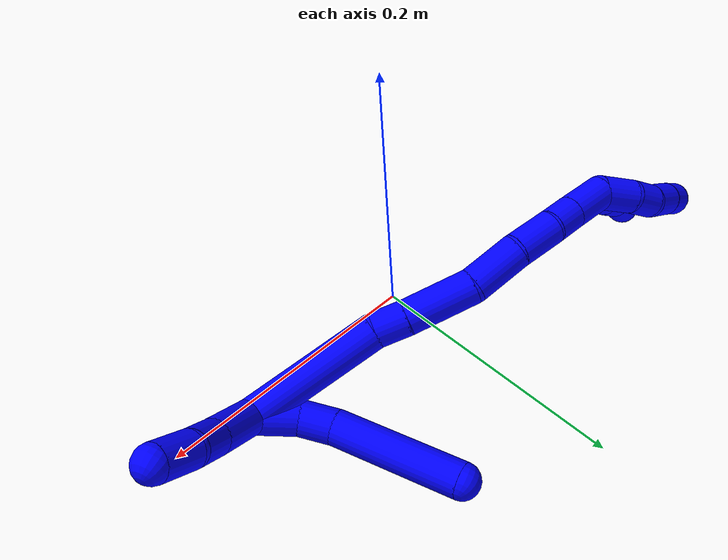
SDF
<sdf version="1.7">
 <world name="default">
  <model name="1">
   <static>0</static>
   <link name="1">
    <collision name="collision-cylinder-e_1_2_8">
     <pose>-0.007301 0.012135 0.006758 -1.06266 -0.483973 0.28811</pose>
     <geometry><cylinder><radius>0.0125</radius><length>0.031383</length></cylinder></geometry>
     <surface>
      <friction><ode><mu>1.16</mu><mu2>1.16</mu2><slip1>0</slip1><slip2>0</slip2></ode></friction>
      <contact><ode><kp>1e+06</kp><kd>1</kd><max_vel>0</max_vel><min_depth>0.001</min_depth></ode></contact>
     </surface>
    </collision>
    <visual name="visual-cylinder-e_1_2_8">
     <pose>-0.007301 0.012135 0.006758 -1.06266 -0.483973 0.28811</pose>
     <geometry><cylinder><radius>0.0125</radius><length>0.031383</length></cylinder></geometry>
     <material><ambient>0 0 1 1</ambient></material>
    </visual>
    <collision name="collision-cylinder-e_2_8_9">
     <pose>-0.019716 0.035585 0.015229 -1.42053 -0.420212 0.362759</pose>
     <geometry><cylinder><radius>0.0125</radius><length>0.02507</length></cylinder></geometry>
     <surface>
      <friction><ode><mu>1.16</mu><mu2>1.16</mu2><slip1>0</slip1><slip2>0</slip2></ode></friction>
      <contact><ode><kp>1e+06</kp><kd>1</kd><max_vel>0</max_vel><min_depth>0.001</min_depth></ode></contact>
     </surface>
    </collision>
    <visual name="visual-cylinder-e_2_8_9">
     <pose>-0.019716 0.035585 0.015229 -1.42053 -0.420212 0.362759</pose>
     <geometry><cylinder><radius>0.0125</radius><length>0.02507</length></cylinder></geometry>
     <material><ambient>0 0 1 1</ambient></material>
    </visual>
    <collision name="collision-cylinder-e_3_9_6">
     <pose>-0.03592 0.092064 0.011946 -1.68097 -0.239381 0.267008</pose>
     <geometry><cylinder><radius>0.0125</radius><length>0.093547</length></cylinder></geometry>
     <surface>
      <friction><ode><mu>1.16</mu><mu2>1.16</mu2><slip1>0</slip1><slip2>0</slip2></ode></friction>
      <contact><ode><kp>1e+06</kp><kd>1</kd><max_vel>0</max_vel><min_depth>0.001</min_depth></ode></contact>
     </surface>
    </collision>
    <visual name="visual-cylinder-e_3_9_6">
     <pose>-0.03592 0.092064 0.011946 -1.68097 -0.239381 0.267008</pose>
     <geometry><cylinder><radius>0.0125</radius><length>0.093547</length></cylinder></geometry>
     <material><ambient>0 0 1 1</ambient></material>
    </visual>
    <collision name="collision-cylinder-e_1_2_10">
     <pose>0.013574 0.003834 -0.017784 -2.92926 0.641048 -2.52034</pose>
     <geometry><cylinder><radius>0.0125</radius><length>0.045397</length></cylinder></geometry>
     <surface>
      <friction><ode><mu>1.16</mu><mu2>1.16</mu2><slip1>0</slip1><slip2>0</slip2></ode></friction>
      <contact><ode><kp>1e+06</kp><kd>1</kd><max_vel>0</max_vel><min_depth>0.001</min_depth></ode></contact>
     </surface>
    </collision>
    <visual name="visual-cylinder-e_1_2_10">
     <pose>0.013574 0.003834 -0.017784 -2.92926 0.641048 -2.52034</pose>
     <geometry><cylinder><radius>0.0125</radius><length>0.045397</length></cylinder></geometry>
     <material><ambient>0 0 1 1</ambient></material>
    </visual>
    <collision name="collision-cylinder-e_2_10_11">
     <pose>0.035916 0.011149 -0.045044 -2.78958 0.71503 -2.25294</pose>
     <geometry><cylinder><radius>0.0125</radius><length>0.026743</length></cylinder></geometry>
     <surface>
      <friction><ode><mu>1.16</mu><mu2>1.16</mu2><slip1>0</slip1><slip2>0</slip2></ode></friction>
      <contact><ode><kp>1e+06</kp><kd>1</kd><max_vel>0</max_vel><min_depth>0.001</min_depth></ode></contact>
     </surface>
    </collision>
    <visual name="visual-cylinder-e_2_10_11">
     <pose>0.035916 0.011149 -0.045044 -2.78958 0.71503 -2.25294</pose>
     <geometry><cylinder><radius>0.0125</radius><length>0.026743</length></cylinder></geometry>
     <material><ambient>0 0 1 1</ambient></material>
    </visual>
    <collision name="collision-cylinder-e_3_11_5">
     <pose>0.053332 0.014102 -0.065428 3.09325 0.669907 3.00289</pose>
     <geometry><cylinder><radius>0.0125</radius><length>0.027861</length></cylinder></geometry>
     <surface>
      <friction><ode><mu>1.16</mu><mu2>1.16</mu2><slip1>0</slip1><slip2>0</slip2></ode></friction>
      <contact><ode><kp>1e+06</kp><kd>1</kd><max_vel>0</max_vel><min_depth>0.001</min_depth></ode></contact>
     </surface>
    </collision>
    <visual name="visual-cylinder-e_3_11_5">
     <pose>0.053332 0.014102 -0.065428 3.09325 0.669907 3.00289</pose>
     <geometry><cylinder><radius>0.0125</radius><length>0.027861</length></cylinder></geometry>
     <material><ambient>0 0 1 1</ambient></material>
    </visual>
    <collision name="collision-cylinder-e_1_2_12">
     <pose>0.006334 0.032826 0.03586 -0.741253 0.129558 -0.050404</pose>
     <geometry><cylinder><radius>0.0125</radius><length>0.098052</length></cylinder></geometry>
     <surface>
      <friction><ode><mu>1.16</mu><mu2>1.16</mu2><slip1>0</slip1><slip2>0</slip2></ode></friction>
      <contact><ode><kp>1e+06</kp><kd>1</kd><max_vel>0</max_vel><min_depth>0.001</min_depth></ode></contact>
     </surface>
    </collision>
    <visual name="visual-cylinder-e_1_2_12">
     <pose>0.006334 0.032826 0.03586 -0.741253 0.129558 -0.050404</pose>
     <geometry><cylinder><radius>0.0125</radius><length>0.098052</length></cylinder></geometry>
     <material><ambient>0 0 1 1</ambient></material>
    </visual>
    <collision name="collision-cylinder-e_2_12_13">
     <pose>0.012001 0.074318 0.079037 -0.8696 -0.058681 0.02726</pose>
     <geometry><cylinder><radius>0.0125</radius><length>0.022726</length></cylinder></geometry>
     <surface>
      <friction><ode><mu>1.16</mu><mu2>1.16</mu2><slip1>0</slip1><slip2>0</slip2></ode></friction>
      <contact><ode><kp>1e+06</kp><kd>1</kd><max_vel>0</max_vel><min_depth>0.001</min_depth></ode></contact>
     </surface>
    </collision>
    <visual name="visual-cylinder-e_2_12_13">
     <pose>0.012001 0.074318 0.079037 -0.8696 -0.058681 0.02726</pose>
     <geometry><cylinder><radius>0.0125</radius><length>0.022726</length></cylinder></geometry>
     <material><ambient>0 0 1 1</ambient></material>
    </visual>
    <collision name="collision-cylinder-e_3_13_14">
     <pose>0.010867 0.101003 0.103272 -0.8169 -0.018948 0.008201</pose>
     <geometry><cylinder><radius>0.0125</radius><length>0.049437</length></cylinder></geometry>
     <surface>
      <friction><ode><mu>1.16</mu><mu2>1.16</mu2><slip1>0</slip1><slip2>0</slip2></ode></friction>
      <contact><ode><kp>1e+06</kp><kd>1</kd><max_vel>0</max_vel><min_depth>0.001</min_depth></ode></contact>
     </surface>
    </collision>
    <visual name="visual-cylinder-e_3_13_14">
     <pose>0.010867 0.101003 0.103272 -0.8169 -0.018948 0.008201</pose>
     <geometry><cylinder><radius>0.0125</radius><length>0.049437</length></cylinder></geometry>
     <material><ambient>0 0 1 1</ambient></material>
    </visual>
    <collision name="collision-cylinder-e_4_14_15">
     <pose>0.011699 0.129626 0.136466 -0.57745 0.066844 -0.019861</pose>
     <geometry><cylinder><radius>0.0125</radius><length>0.038944</length></cylinder></geometry>
     <surface>
      <friction><ode><mu>1.16</mu><mu2>1.16</mu2><slip1>0</slip1><slip2>0</slip2></ode></friction>
      <contact><ode><kp>1e+06</kp><kd>1</kd><max_vel>0</max_vel><min_depth>0.001</min_depth></ode></contact>
     </surface>
    </collision>
    <visual name="visual-cylinder-e_4_14_15">
     <pose>0.011699 0.129626 0.136466 -0.57745 0.066844 -0.019861</pose>
     <geometry><cylinder><radius>0.0125</radius><length>0.038944</length></cylinder></geometry>
     <material><ambient>0 0 1 1</ambient></material>
    </visual>
    <collision name="collision-cylinder-e_5_15_16">
     <pose>0.01113 0.147863 0.167153 -0.487083 -0.114185 0.028401</pose>
     <geometry><cylinder><radius>0.0125</radius><length>0.032822</length></cylinder></geometry>
     <surface>
      <friction><ode><mu>1.16</mu><mu2>1.16</mu2><slip1>0</slip1><slip2>0</slip2></ode></friction>
      <contact><ode><kp>1e+06</kp><kd>1</kd><max_vel>0</max_vel><min_depth>0.001</min_depth></ode></contact>
     </surface>
    </collision>
    <visual name="visual-cylinder-e_5_15_16">
     <pose>0.01113 0.147863 0.167153 -0.487083 -0.114185 0.028401</pose>
     <geometry><cylinder><radius>0.0125</radius><length>0.032822</length></cylinder></geometry>
     <material><ambient>0 0 1 1</ambient></material>
    </visual>
    <collision name="collision-cylinder-e_6_16_17">
     <pose>0.006647 0.159038 0.192045 -0.325997 -0.231866 0.038299</pose>
     <geometry><cylinder><radius>0.0125</radius><length>0.022743</length></cylinder></geometry>
     <surface>
      <friction><ode><mu>1.16</mu><mu2>1.16</mu2><slip1>0</slip1><slip2>0</slip2></ode></friction>
      <contact><ode><kp>1e+06</kp><kd>1</kd><max_vel>0</max_vel><min_depth>0.001</min_depth></ode></contact>
     </surface>
    </collision>
    <visual name="visual-cylinder-e_6_16_17">
     <pose>0.006647 0.159038 0.192045 -0.325997 -0.231866 0.038299</pose>
     <geometry><cylinder><radius>0.0125</radius><length>0.022743</length></cylinder></geometry>
     <material><ambient>0 0 1 1</ambient></material>
    </visual>
    <collision name="collision-cylinder-e_7_17_1">
     <pose>0.000151 0.168633 0.218635 -0.359373 -0.221961 0.040479</pose>
     <geometry><cylinder><radius>0.0125</radius><length>0.035276</length></cylinder></geometry>
     <surface>
      <friction><ode><mu>1.16</mu><mu2>1.16</mu2><slip1>0</slip1><slip2>0</slip2></ode></friction>
      <contact><ode><kp>1e+06</kp><kd>1</kd><max_vel>0</max_vel><min_depth>0.001</min_depth></ode></contact>
     </surface>
    </collision>
    <visual name="visual-cylinder-e_7_17_1">
     <pose>0.000151 0.168633 0.218635 -0.359373 -0.221961 0.040479</pose>
     <geometry><cylinder><radius>0.0125</radius><length>0.035276</length></cylinder></geometry>
     <material><ambient>0 0 1 1</ambient></material>
    </visual>
    <collision name="collision-cylinder-e_1_1_18">
     <pose>-0.011754 0.183383 0.242119 -0.867415 -0.612962 0.291036</pose>
     <geometry><cylinder><radius>0.0125</radius><length>0.027889</length></cylinder></geometry>
     <surface>
      <friction><ode><mu>1.16</mu><mu2>1.16</mu2><slip1>0</slip1><slip2>0</slip2></ode></friction>
      <contact><ode><kp>1e+06</kp><kd>1</kd><max_vel>0</max_vel><min_depth>0.001</min_depth></ode></contact>
     </surface>
    </collision>
    <visual name="visual-cylinder-e_1_1_18">
     <pose>-0.011754 0.183383 0.242119 -0.867415 -0.612962 0.291036</pose>
     <geometry><cylinder><radius>0.0125</radius><length>0.027889</length></cylinder></geometry>
     <material><ambient>0 0 1 1</ambient></material>
    </visual>
    <collision name="collision-cylinder-e_2_18_19">
     <pose>-0.027663 0.19649 0.256259 -0.577588 -0.773745 0.240907</pose>
     <geometry><cylinder><radius>0.0125</radius><length>0.022572</length></cylinder></geometry>
     <surface>
      <friction><ode><mu>1.16</mu><mu2>1.16</mu2><slip1>0</slip1><slip2>0</slip2></ode></friction>
      <contact><ode><kp>1e+06</kp><kd>1</kd><max_vel>0</max_vel><min_depth>0.001</min_depth></ode></contact>
     </surface>
    </collision>
    <visual name="visual-cylinder-e_2_18_19">
     <pose>-0.027663 0.19649 0.256259 -0.577588 -0.773745 0.240907</pose>
     <geometry><cylinder><radius>0.0125</radius><length>0.022572</length></cylinder></geometry>
     <material><ambient>0 0 1 1</ambient></material>
    </visual>
    <collision name="collision-cylinder-e_3_19_20">
     <pose>-0.043843 0.203207 0.274025 -0.206874 -0.635594 0.068268</pose>
     <geometry><cylinder><radius>0.0125</radius><length>0.02794</length></cylinder></geometry>
     <surface>
      <friction><ode><mu>1.16</mu><mu2>1.16</mu2><slip1>0</slip1><slip2>0</slip2></ode></friction>
      <contact><ode><kp>1e+06</kp><kd>1</kd><max_vel>0</max_vel><min_depth>0.001</min_depth></ode></contact>
     </surface>
    </collision>
    <visual name="visual-cylinder-e_3_19_20">
     <pose>-0.043843 0.203207 0.274025 -0.206874 -0.635594 0.068268</pose>
     <geometry><cylinder><radius>0.0125</radius><length>0.02794</length></cylinder></geometry>
     <material><ambient>0 0 1 1</ambient></material>
    </visual>
    <collision name="collision-cylinder-e_4_20_4">
     <pose>-0.059024 0.206426 0.293295 -0.109652 -0.691616 0.03954</pose>
     <geometry><cylinder><radius>0.0125</radius><length>0.021599</length></cylinder></geometry>
     <surface>
      <friction><ode><mu>1.16</mu><mu2>1.16</mu2><slip1>0</slip1><slip2>0</slip2></ode></friction>
      <contact><ode><kp>1e+06</kp><kd>1</kd><max_vel>0</max_vel><min_depth>0.001</min_depth></ode></contact>
     </surface>
    </collision>
    <visual name="visual-cylinder-e_4_20_4">
     <pose>-0.059024 0.206426 0.293295 -0.109652 -0.691616 0.03954</pose>
     <geometry><cylinder><radius>0.0125</radius><length>0.021599</length></cylinder></geometry>
     <material><ambient>0 0 1 1</ambient></material>
    </visual>
    <collision name="collision-cylinder-e_1_1_21">
     <pose>-0.014641 0.169456 0.247216 0.396897 -0.678701 -0.141738</pose>
     <geometry><cylinder><radius>0.0125</radius><length>0.034754</length></cylinder></geometry>
     <surface>
      <friction><ode><mu>1.16</mu><mu2>1.16</mu2><slip1>0</slip1><slip2>0</slip2></ode></friction>
      <contact><ode><kp>1e+06</kp><kd>1</kd><max_vel>0</max_vel><min_depth>0.001</min_depth></ode></contact>
     </surface>
    </collision>
    <visual name="visual-cylinder-e_1_1_21">
     <pose>-0.014641 0.169456 0.247216 0.396897 -0.678701 -0.141738</pose>
     <geometry><cylinder><radius>0.0125</radius><length>0.034754</length></cylinder></geometry>
     <material><ambient>0 0 1 1</ambient></material>
    </visual>
    <collision name="collision-cylinder-e_2_21_22">
     <pose>-0.034362 0.162835 0.266318 0.207103 -0.915606 -0.10232</pose>
     <geometry><cylinder><radius>0.0125</radius><length>0.022228</length></cylinder></geometry>
     <surface>
      <friction><ode><mu>1.16</mu><mu2>1.16</mu2><slip1>0</slip1><slip2>0</slip2></ode></friction>
      <contact><ode><kp>1e+06</kp><kd>1</kd><max_vel>0</max_vel><min_depth>0.001</min_depth></ode></contact>
     </surface>
    </collision>
    <visual name="visual-cylinder-e_2_21_22">
     <pose>-0.034362 0.162835 0.266318 0.207103 -0.915606 -0.10232</pose>
     <geometry><cylinder><radius>0.0125</radius><length>0.022228</length></cylinder></geometry>
     <material><ambient>0 0 1 1</ambient></material>
    </visual>
    <collision name="collision-cylinder-e_3_22_23">
     <pose>-0.050126 0.163269 0.279925 -0.255973 -0.766799 0.103724</pose>
     <geometry><cylinder><radius>0.0125</radius><length>0.020037</length></cylinder></geometry>
     <surface>
      <friction><ode><mu>1.16</mu><mu2>1.16</mu2><slip1>0</slip1><slip2>0</slip2></ode></friction>
      <contact><ode><kp>1e+06</kp><kd>1</kd><max_vel>0</max_vel><min_depth>0.001</min_depth></ode></contact>
     </surface>
    </collision>
    <visual name="visual-cylinder-e_3_22_23">
     <pose>-0.050126 0.163269 0.279925 -0.255973 -0.766799 0.103724</pose>
     <geometry><cylinder><radius>0.0125</radius><length>0.020037</length></cylinder></geometry>
     <material><ambient>0 0 1 1</ambient></material>
    </visual>
    <collision name="collision-cylinder-e_4_23_3">
     <pose>-0.066326 0.164938 0.293722 0.023146 -0.935395 -0.011691</pose>
     <geometry><cylinder><radius>0.0125</radius><length>0.022981</length></cylinder></geometry>
     <surface>
      <friction><ode><mu>1.16</mu><mu2>1.16</mu2><slip1>0</slip1><slip2>0</slip2></ode></friction>
      <contact><ode><kp>1e+06</kp><kd>1</kd><max_vel>0</max_vel><min_depth>0.001</min_depth></ode></contact>
     </surface>
    </collision>
    <visual name="visual-cylinder-e_4_23_3">
     <pose>-0.066326 0.164938 0.293722 0.023146 -0.935395 -0.011691</pose>
     <geometry><cylinder><radius>0.0125</radius><length>0.022981</length></cylinder></geometry>
     <material><ambient>0 0 1 1</ambient></material>
    </visual>
    <collision name="collision-sphere-3">
     <pose>-0.075574 0.16478 0.30054 0 -0 0</pose>
     <geometry><sphere><radius>0.0125</radius></sphere></geometry>
     <surface>
      <friction><ode><mu>1.16</mu><mu2>1.16</mu2><slip1>0</slip1><slip2>0</slip2></ode></friction>
      <contact><ode><kp>1e+06</kp><kd>1</kd><max_vel>0</max_vel><min_depth>0.001</min_depth></ode></contact>
     </surface>
    </collision>
    <visual name="visual-sphere-3">
     <pose>-0.075574 0.16478 0.30054 0 -0 0</pose>
     <geometry><sphere><radius>0.0125</radius></sphere></geometry>
     <material><ambient>0 0 1 1</ambient></material>
    </visual>
    <collision name="collision-sphere-23">
     <pose>-0.057078 0.165096 0.286904 0 -0 0</pose>
     <geometry><sphere><radius>0.0125</radius></sphere></geometry>
     <surface>
      <friction><ode><mu>1.16</mu><mu2>1.16</mu2><slip1>0</slip1><slip2>0</slip2></ode></friction>
      <contact><ode><kp>1e+06</kp><kd>1</kd><max_vel>0</max_vel><min_depth>0.001</min_depth></ode></contact>
     </surface>
    </collision>
    <visual name="visual-sphere-23">
     <pose>-0.057078 0.165096 0.286904 0 -0 0</pose>
     <geometry><sphere><radius>0.0125</radius></sphere></geometry>
     <material><ambient>0 0 1 1</ambient></material>
    </visual>
    <collision name="collision-sphere-22">
     <pose>-0.043175 0.161442 0.272945 0 -0 0</pose>
     <geometry><sphere><radius>0.0125</radius></sphere></geometry>
     <surface>
      <friction><ode><mu>1.16</mu><mu2>1.16</mu2><slip1>0</slip1><slip2>0</slip2></ode></friction>
      <contact><ode><kp>1e+06</kp><kd>1</kd><max_vel>0</max_vel><min_depth>0.001</min_depth></ode></contact>
     </surface>
    </collision>
    <visual name="visual-sphere-22">
     <pose>-0.043175 0.161442 0.272945 0 -0 0</pose>
     <geometry><sphere><radius>0.0125</radius></sphere></geometry>
     <material><ambient>0 0 1 1</ambient></material>
    </visual>
    <collision name="collision-sphere-21">
     <pose>-0.02555 0.164227 0.259691 0 -0 0</pose>
     <geometry><sphere><radius>0.0125</radius></sphere></geometry>
     <surface>
      <friction><ode><mu>1.16</mu><mu2>1.16</mu2><slip1>0</slip1><slip2>0</slip2></ode></friction>
      <contact><ode><kp>1e+06</kp><kd>1</kd><max_vel>0</max_vel><min_depth>0.001</min_depth></ode></contact>
     </surface>
    </collision>
    <visual name="visual-sphere-21">
     <pose>-0.02555 0.164227 0.259691 0 -0 0</pose>
     <geometry><sphere><radius>0.0125</radius></sphere></geometry>
     <material><ambient>0 0 1 1</ambient></material>
    </visual>
    <collision name="collision-sphere-4">
     <pose>-0.065912 0.207336 0.301563 0 -0 0</pose>
     <geometry><sphere><radius>0.0125</radius></sphere></geometry>
     <surface>
      <friction><ode><mu>1.16</mu><mu2>1.16</mu2><slip1>0</slip1><slip2>0</slip2></ode></friction>
      <contact><ode><kp>1e+06</kp><kd>1</kd><max_vel>0</max_vel><min_depth>0.001</min_depth></ode></contact>
     </surface>
    </collision>
    <visual name="visual-sphere-4">
     <pose>-0.065912 0.207336 0.301563 0 -0 0</pose>
     <geometry><sphere><radius>0.0125</radius></sphere></geometry>
     <material><ambient>0 0 1 1</ambient></material>
    </visual>
    <collision name="collision-sphere-20">
     <pose>-0.052137 0.205516 0.285027 0 -0 0</pose>
     <geometry><sphere><radius>0.0125</radius></sphere></geometry>
     <surface>
      <friction><ode><mu>1.16</mu><mu2>1.16</mu2><slip1>0</slip1><slip2>0</slip2></ode></friction>
      <contact><ode><kp>1e+06</kp><kd>1</kd><max_vel>0</max_vel><min_depth>0.001</min_depth></ode></contact>
     </surface>
    </collision>
    <visual name="visual-sphere-20">
     <pose>-0.052137 0.205516 0.285027 0 -0 0</pose>
     <geometry><sphere><radius>0.0125</radius></sphere></geometry>
     <material><ambient>0 0 1 1</ambient></material>
    </visual>
    <collision name="collision-sphere-11">
     <pose>0.044682 0.01463 -0.054521 0 -0 0</pose>
     <geometry><sphere><radius>0.0125</radius></sphere></geometry>
     <surface>
      <friction><ode><mu>1.16</mu><mu2>1.16</mu2><slip1>0</slip1><slip2>0</slip2></ode></friction>
      <contact><ode><kp>1e+06</kp><kd>1</kd><max_vel>0</max_vel><min_depth>0.001</min_depth></ode></contact>
     </surface>
    </collision>
    <visual name="visual-sphere-11">
     <pose>0.044682 0.01463 -0.054521 0 -0 0</pose>
     <geometry><sphere><radius>0.0125</radius></sphere></geometry>
     <material><ambient>0 0 1 1</ambient></material>
    </visual>
    <collision name="collision-sphere-10">
     <pose>0.027149 0.007668 -0.035567 0 -0 0</pose>
     <geometry><sphere><radius>0.0125</radius></sphere></geometry>
     <surface>
      <friction><ode><mu>1.16</mu><mu2>1.16</mu2><slip1>0</slip1><slip2>0</slip2></ode></friction>
      <contact><ode><kp>1e+06</kp><kd>1</kd><max_vel>0</max_vel><min_depth>0.001</min_depth></ode></contact>
     </surface>
    </collision>
    <visual name="visual-sphere-10">
     <pose>0.027149 0.007668 -0.035567 0 -0 0</pose>
     <geometry><sphere><radius>0.0125</radius></sphere></geometry>
     <material><ambient>0 0 1 1</ambient></material>
    </visual>
    <collision name="collision-sphere-6">
     <pose>-0.04701 0.137229 0.00695 0 -0 0</pose>
     <geometry><sphere><radius>0.0125</radius></sphere></geometry>
     <surface>
      <friction><ode><mu>1.16</mu><mu2>1.16</mu2><slip1>0</slip1><slip2>0</slip2></ode></friction>
      <contact><ode><kp>1e+06</kp><kd>1</kd><max_vel>0</max_vel><min_depth>0.001</min_depth></ode></contact>
     </surface>
    </collision>
    <visual name="visual-sphere-6">
     <pose>-0.04701 0.137229 0.00695 0 -0 0</pose>
     <geometry><sphere><radius>0.0125</radius></sphere></geometry>
     <material><ambient>0 0 1 1</ambient></material>
    </visual>
    <collision name="collision-sphere-9">
     <pose>-0.02483 0.0469 0.016942 0 -0 0</pose>
     <geometry><sphere><radius>0.0125</radius></sphere></geometry>
     <surface>
      <friction><ode><mu>1.16</mu><mu2>1.16</mu2><slip1>0</slip1><slip2>0</slip2></ode></friction>
      <contact><ode><kp>1e+06</kp><kd>1</kd><max_vel>0</max_vel><min_depth>0.001</min_depth></ode></contact>
     </surface>
    </collision>
    <visual name="visual-sphere-9">
     <pose>-0.02483 0.0469 0.016942 0 -0 0</pose>
     <geometry><sphere><radius>0.0125</radius></sphere></geometry>
     <material><ambient>0 0 1 1</ambient></material>
    </visual>
    <collision name="collision-sphere-2">
     <geometry><sphere><radius>0.0125</radius></sphere></geometry>
     <surface>
      <friction><ode><mu>1.16</mu><mu2>1.16</mu2><slip1>0</slip1><slip2>0</slip2></ode></friction>
      <contact><ode><kp>1e+06</kp><kd>1</kd><max_vel>0</max_vel><min_depth>0.001</min_depth></ode></contact>
     </surface>
    </collision>
    <visual name="visual-sphere-2">
     <geometry><sphere><radius>0.0125</radius></sphere></geometry>
     <material><ambient>0 0 1 1</ambient></material>
    </visual>
    <collision name="collision-sphere-19">
     <pose>-0.03555 0.200897 0.263023 0 -0 0</pose>
     <geometry><sphere><radius>0.0125</radius></sphere></geometry>
     <surface>
      <friction><ode><mu>1.16</mu><mu2>1.16</mu2><slip1>0</slip1><slip2>0</slip2></ode></friction>
      <contact><ode><kp>1e+06</kp><kd>1</kd><max_vel>0</max_vel><min_depth>0.001</min_depth></ode></contact>
     </surface>
    </collision>
    <visual name="visual-sphere-19">
     <pose>-0.03555 0.200897 0.263023 0 -0 0</pose>
     <geometry><sphere><radius>0.0125</radius></sphere></geometry>
     <material><ambient>0 0 1 1</ambient></material>
    </visual>
    <collision name="collision-sphere-8">
     <pose>-0.014603 0.024269 0.013516 0 -0 0</pose>
     <geometry><sphere><radius>0.0125</radius></sphere></geometry>
     <surface>
      <friction><ode><mu>1.16</mu><mu2>1.16</mu2><slip1>0</slip1><slip2>0</slip2></ode></friction>
      <contact><ode><kp>1e+06</kp><kd>1</kd><max_vel>0</max_vel><min_depth>0.001</min_depth></ode></contact>
     </surface>
    </collision>
    <visual name="visual-sphere-8">
     <pose>-0.014603 0.024269 0.013516 0 -0 0</pose>
     <geometry><sphere><radius>0.0125</radius></sphere></geometry>
     <material><ambient>0 0 1 1</ambient></material>
    </visual>
    <collision name="collision-sphere-5">
     <pose>0.061981 0.013574 -0.076335 0 -0 0</pose>
     <geometry><sphere><radius>0.0125</radius></sphere></geometry>
     <surface>
      <friction><ode><mu>1.16</mu><mu2>1.16</mu2><slip1>0</slip1><slip2>0</slip2></ode></friction>
      <contact><ode><kp>1e+06</kp><kd>1</kd><max_vel>0</max_vel><min_depth>0.001</min_depth></ode></contact>
     </surface>
    </collision>
    <visual name="visual-sphere-5">
     <pose>0.061981 0.013574 -0.076335 0 -0 0</pose>
     <geometry><sphere><radius>0.0125</radius></sphere></geometry>
     <material><ambient>0 0 1 1</ambient></material>
    </visual>
    <collision name="collision-sphere-12">
     <pose>0.012668 0.065651 0.071719 0 -0 0</pose>
     <geometry><sphere><radius>0.0125</radius></sphere></geometry>
     <surface>
      <friction><ode><mu>1.16</mu><mu2>1.16</mu2><slip1>0</slip1><slip2>0</slip2></ode></friction>
      <contact><ode><kp>1e+06</kp><kd>1</kd><max_vel>0</max_vel><min_depth>0.001</min_depth></ode></contact>
     </surface>
    </collision>
    <visual name="visual-sphere-12">
     <pose>0.012668 0.065651 0.071719 0 -0 0</pose>
     <geometry><sphere><radius>0.0125</radius></sphere></geometry>
     <material><ambient>0 0 1 1</ambient></material>
    </visual>
    <collision name="collision-sphere-13">
     <pose>0.011335 0.082985 0.086355 0 -0 0</pose>
     <geometry><sphere><radius>0.0125</radius></sphere></geometry>
     <surface>
      <friction><ode><mu>1.16</mu><mu2>1.16</mu2><slip1>0</slip1><slip2>0</slip2></ode></friction>
      <contact><ode><kp>1e+06</kp><kd>1</kd><max_vel>0</max_vel><min_depth>0.001</min_depth></ode></contact>
     </surface>
    </collision>
    <visual name="visual-sphere-13">
     <pose>0.011335 0.082985 0.086355 0 -0 0</pose>
     <geometry><sphere><radius>0.0125</radius></sphere></geometry>
     <material><ambient>0 0 1 1</ambient></material>
    </visual>
    <collision name="collision-sphere-14">
     <pose>0.010398 0.11902 0.120188 0 -0 0</pose>
     <geometry><sphere><radius>0.0125</radius></sphere></geometry>
     <surface>
      <friction><ode><mu>1.16</mu><mu2>1.16</mu2><slip1>0</slip1><slip2>0</slip2></ode></friction>
      <contact><ode><kp>1e+06</kp><kd>1</kd><max_vel>0</max_vel><min_depth>0.001</min_depth></ode></contact>
     </surface>
    </collision>
    <visual name="visual-sphere-14">
     <pose>0.010398 0.11902 0.120188 0 -0 0</pose>
     <geometry><sphere><radius>0.0125</radius></sphere></geometry>
     <material><ambient>0 0 1 1</ambient></material>
    </visual>
    <collision name="collision-sphere-15">
     <pose>0.013 0.140232 0.152745 0 -0 0</pose>
     <geometry><sphere><radius>0.0125</radius></sphere></geometry>
     <surface>
      <friction><ode><mu>1.16</mu><mu2>1.16</mu2><slip1>0</slip1><slip2>0</slip2></ode></friction>
      <contact><ode><kp>1e+06</kp><kd>1</kd><max_vel>0</max_vel><min_depth>0.001</min_depth></ode></contact>
     </surface>
    </collision>
    <visual name="visual-sphere-15">
     <pose>0.013 0.140232 0.152745 0 -0 0</pose>
     <geometry><sphere><radius>0.0125</radius></sphere></geometry>
     <material><ambient>0 0 1 1</ambient></material>
    </visual>
    <collision name="collision-sphere-16">
     <pose>0.00926 0.155494 0.181561 0 -0 0</pose>
     <geometry><sphere><radius>0.0125</radius></sphere></geometry>
     <surface>
      <friction><ode><mu>1.16</mu><mu2>1.16</mu2><slip1>0</slip1><slip2>0</slip2></ode></friction>
      <contact><ode><kp>1e+06</kp><kd>1</kd><max_vel>0</max_vel><min_depth>0.001</min_depth></ode></contact>
     </surface>
    </collision>
    <visual name="visual-sphere-16">
     <pose>0.00926 0.155494 0.181561 0 -0 0</pose>
     <geometry><sphere><radius>0.0125</radius></sphere></geometry>
     <material><ambient>0 0 1 1</ambient></material>
    </visual>
    <collision name="collision-sphere-17">
     <pose>0.004034 0.162582 0.202529 0 -0 0</pose>
     <geometry><sphere><radius>0.0125</radius></sphere></geometry>
     <surface>
      <friction><ode><mu>1.16</mu><mu2>1.16</mu2><slip1>0</slip1><slip2>0</slip2></ode></friction>
      <contact><ode><kp>1e+06</kp><kd>1</kd><max_vel>0</max_vel><min_depth>0.001</min_depth></ode></contact>
     </surface>
    </collision>
    <visual name="visual-sphere-17">
     <pose>0.004034 0.162582 0.202529 0 -0 0</pose>
     <geometry><sphere><radius>0.0125</radius></sphere></geometry>
     <material><ambient>0 0 1 1</ambient></material>
    </visual>
    <collision name="collision-sphere-1">
     <pose>-0.003732 0.174684 0.234742 0 -0 0</pose>
     <geometry><sphere><radius>0.0125</radius></sphere></geometry>
     <surface>
      <friction><ode><mu>1.16</mu><mu2>1.16</mu2><slip1>0</slip1><slip2>0</slip2></ode></friction>
      <contact><ode><kp>1e+06</kp><kd>1</kd><max_vel>0</max_vel><min_depth>0.001</min_depth></ode></contact>
     </surface>
    </collision>
    <visual name="visual-sphere-1">
     <pose>-0.003732 0.174684 0.234742 0 -0 0</pose>
     <geometry><sphere><radius>0.0125</radius></sphere></geometry>
     <material><ambient>0 0 1 1</ambient></material>
    </visual>
    <collision name="collision-sphere-18">
     <pose>-0.019776 0.192082 0.249496 0 -0 0</pose>
     <geometry><sphere><radius>0.0125</radius></sphere></geometry>
     <surface>
      <friction><ode><mu>1.16</mu><mu2>1.16</mu2><slip1>0</slip1><slip2>0</slip2></ode></friction>
      <contact><ode><kp>1e+06</kp><kd>1</kd><max_vel>0</max_vel><min_depth>0.001</min_depth></ode></contact>
     </surface>
    </collision>
    <visual name="visual-sphere-18">
     <pose>-0.019776 0.192082 0.249496 0 -0 0</pose>
     <geometry><sphere><radius>0.0125</radius></sphere></geometry>
     <material><ambient>0 0 1 1</ambient></material>
    </visual>
    <inertial>
     <pose>-0.007821 0.101833 0.112765 0 -0 0</pose>
     <mass>0.75</mass>
     <inertia>
      <ixx>0.000192</ixx>
      <ixy>0</ixy>
      <ixz>0</ixz>
      <iyy>0.000156</iyy>
      <iyz>0</iyz>
      <izz>-0.000114</izz>
     </inertia>
    </inertial>
   </link>
   <pose>0.151485 0.023321 0.020649 1.40403 -1.26954 -1.02157</pose>
  </model>
 </world>
</sdf>
